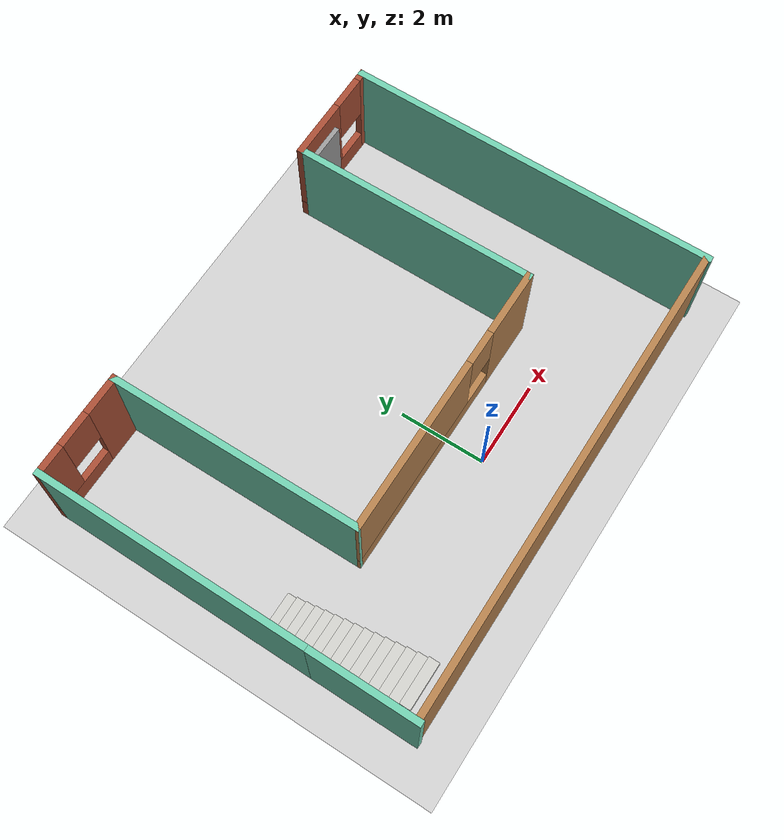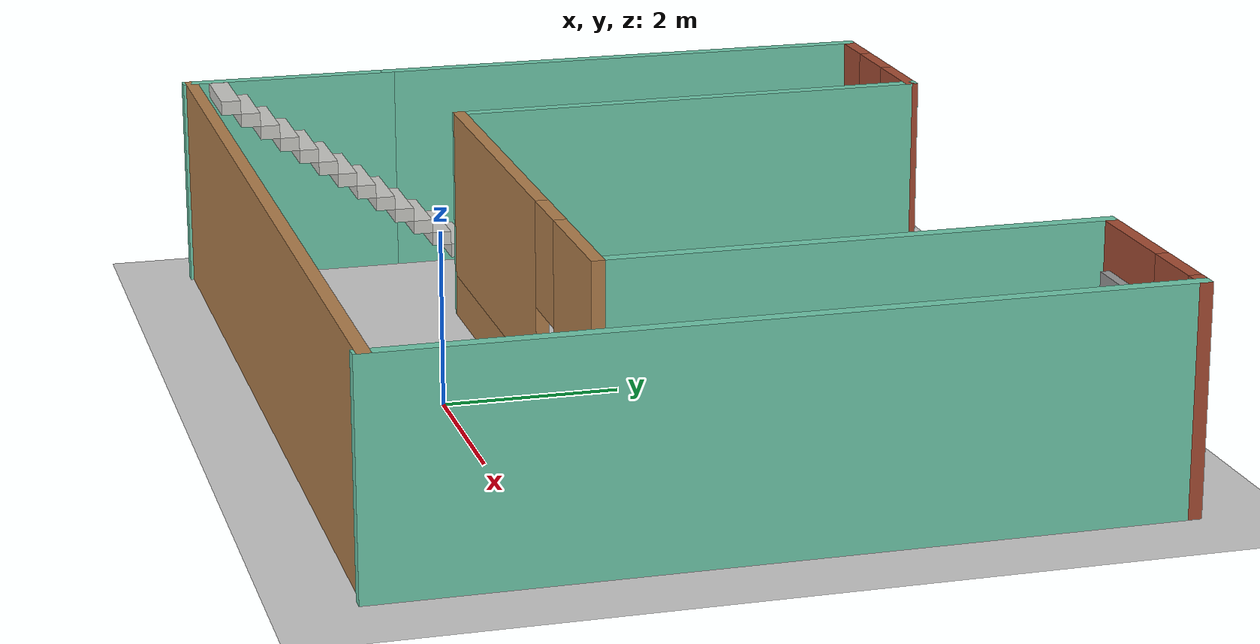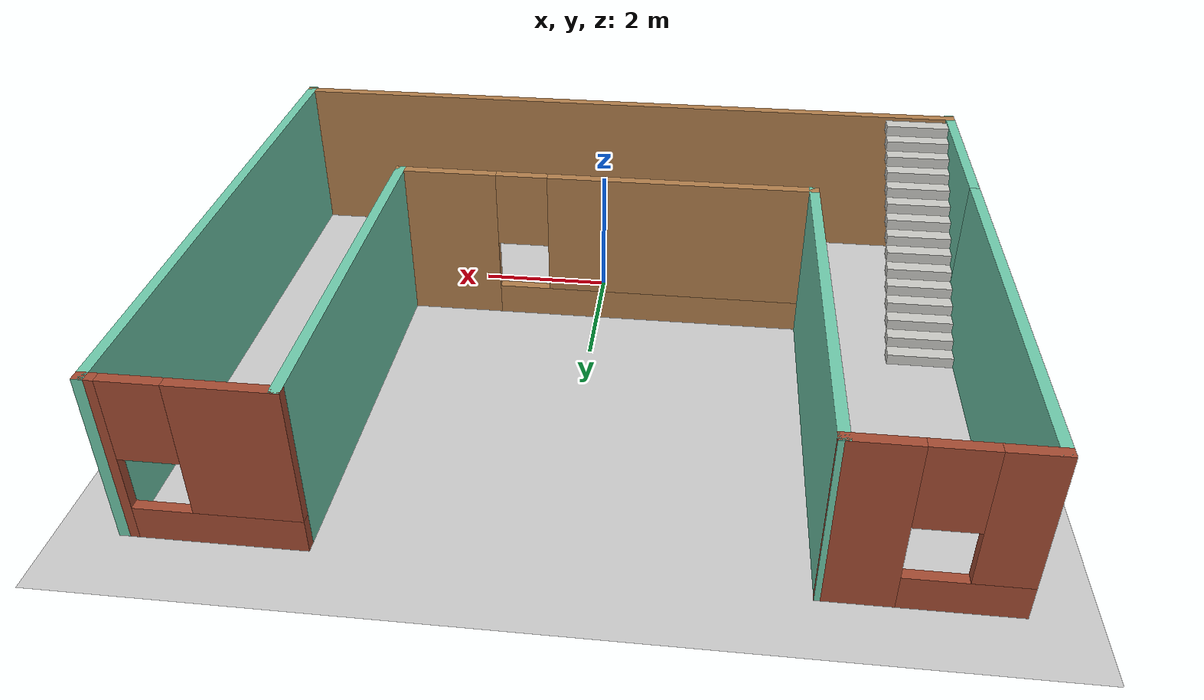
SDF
<sdf version="1.6">
 <world name="default">
  <light name="sun" type="directional">
   <pose>0 0 10 0 -0 0</pose>
   <diffuse>0.8 0.8 0.8 1</diffuse>
   <specular>0.2 0.2 0.2 1</specular>
   <attenuation>
    <range>1000</range>
    <constant>0.9</constant>
    <linear>0.01</linear>
    <quadratic>0.001</quadratic>
   </attenuation>
   <direction>-0.5 0.1 -0.9</direction>
  </light>
  <model name="ground_plane">
   <static>1</static>
   <link name="link">
    <collision name="collision">
     <geometry><plane><normal>0 0 1</normal><size>100 100</size></plane></geometry>
     <surface><friction><ode><mu>100</mu><mu2>50</mu2></ode></friction></surface>
    </collision>
    <visual name="visual">
     <cast_shadows>0</cast_shadows>
     <geometry><plane><normal>0 0 1</normal><size>100 100</size></plane></geometry>
     <material>
      <script><uri>file://media/materials/scripts/gazebo.material</uri><name>Gazebo/Grey</name></script>
     </material>
    </visual>
   </link>
  </model>
  <gravity>0 0 -9.8</gravity>
  <magnetic_field>6e-06 2.3e-05 -4.2e-05</magnetic_field>
  <atmosphere type="adiabatic"/>
  <physics name="default_physics" default="0" type="ode">
   <max_step_size>0.001</max_step_size>
   <real_time_factor>1</real_time_factor>
   <real_time_update_rate>1000</real_time_update_rate>
  </physics>
  <scene><ambient>0.4 0.4 0.4 1</ambient><background>0.7 0.7 0.7 1</background><shadows>1</shadows></scene>
  <spherical_coordinates>
   <surface_model>EARTH_WGS84</surface_model>
   <latitude_deg>0</latitude_deg>
   <longitude_deg>0</longitude_deg>
   <elevation>0</elevation>
   <heading_deg>0</heading_deg>
  </spherical_coordinates>
  <model name="U_world2">
   <pose>-0.11589 2.35329 0 0 -0 0</pose>
   <link name="Door_2">
    <collision name="Door_2_Collision">
     <geometry><box><size>0.9 0.17 2</size></box></geometry>
     <pose>0 0 1 0 -0 0</pose>
    </collision>
    <visual name="Door_2_Visual">
     <pose>0 0 1 0 -0 0</pose>
     <geometry><box><size>0.9 0.17 2</size></box></geometry>
     <material>
      <script><uri>file://media/materials/scripts/gazebo.material</uri><name>Gazebo/Grey</name></script>
     </material>
    </visual>
    <pose>3.89547 4.09766 0 0 -0 0</pose>
   </link>
   <link name="Stairs_1">
    <visual name="Stairs_1_Visual_0">
     <pose>-4.96958 -0.671542 0.083333 0 -0 0</pose>
     <geometry><box><size>1 0.233333 0.166667</size></box></geometry>
     <material>
      <script><uri>file://media/materials/scripts/gazebo.material</uri><name>Gazebo/CeilingTiled</name></script>
      <ambient>1 1 1 1</ambient>
     </material>
     <meta><layer>0</layer></meta>
    </visual>
    <collision name="Stairs_1_Collision_0">
     <geometry><box><size>1 0.233333 0.166667</size></box></geometry>
     <pose>-4.96958 -0.671542 0.083333 0 -0 0</pose>
    </collision>
    <visual name="Stairs_1_Visual_1">
     <pose>-4.96958 -0.904875 0.25 0 -0 0</pose>
     <geometry><box><size>1 0.233333 0.166667</size></box></geometry>
     <material>
      <script><uri>file://media/materials/scripts/gazebo.material</uri><name>Gazebo/CeilingTiled</name></script>
      <ambient>1 1 1 1</ambient>
     </material>
     <meta><layer>0</layer></meta>
    </visual>
    <collision name="Stairs_1_Collision_1">
     <geometry><box><size>1 0.233333 0.166667</size></box></geometry>
     <pose>-4.96958 -0.904875 0.25 0 -0 0</pose>
    </collision>
    <visual name="Stairs_1_Visual_2">
     <pose>-4.96958 -1.13821 0.416667 0 -0 0</pose>
     <geometry><box><size>1 0.233333 0.166667</size></box></geometry>
     <material>
      <script><uri>file://media/materials/scripts/gazebo.material</uri><name>Gazebo/CeilingTiled</name></script>
      <ambient>1 1 1 1</ambient>
     </material>
     <meta><layer>0</layer></meta>
    </visual>
    <collision name="Stairs_1_Collision_2">
     <geometry><box><size>1 0.233333 0.166667</size></box></geometry>
     <pose>-4.96958 -1.13821 0.416667 0 -0 0</pose>
    </collision>
    <visual name="Stairs_1_Visual_3">
     <pose>-4.96958 -1.37154 0.583333 0 -0 0</pose>
     <geometry><box><size>1 0.233333 0.166667</size></box></geometry>
     <material>
      <script><uri>file://media/materials/scripts/gazebo.material</uri><name>Gazebo/CeilingTiled</name></script>
      <ambient>1 1 1 1</ambient>
     </material>
     <meta><layer>0</layer></meta>
    </visual>
    <collision name="Stairs_1_Collision_3">
     <geometry><box><size>1 0.233333 0.166667</size></box></geometry>
     <pose>-4.96958 -1.37154 0.583333 0 -0 0</pose>
    </collision>
    <visual name="Stairs_1_Visual_4">
     <pose>-4.96958 -1.60488 0.75 0 -0 0</pose>
     <geometry><box><size>1 0.233333 0.166667</size></box></geometry>
     <material>
      <script><uri>file://media/materials/scripts/gazebo.material</uri><name>Gazebo/CeilingTiled</name></script>
      <ambient>1 1 1 1</ambient>
     </material>
     <meta><layer>0</layer></meta>
    </visual>
    <collision name="Stairs_1_Collision_4">
     <geometry><box><size>1 0.233333 0.166667</size></box></geometry>
     <pose>-4.96958 -1.60488 0.75 0 -0 0</pose>
    </collision>
    <visual name="Stairs_1_Visual_5">
     <pose>-4.96958 -1.83821 0.916667 0 -0 0</pose>
     <geometry><box><size>1 0.233333 0.166667</size></box></geometry>
     <material>
      <script><uri>file://media/materials/scripts/gazebo.material</uri><name>Gazebo/CeilingTiled</name></script>
      <ambient>1 1 1 1</ambient>
     </material>
     <meta><layer>0</layer></meta>
    </visual>
    <collision name="Stairs_1_Collision_5">
     <geometry><box><size>1 0.233333 0.166667</size></box></geometry>
     <pose>-4.96958 -1.83821 0.916667 0 -0 0</pose>
    </collision>
    <visual name="Stairs_1_Visual_6">
     <pose>-4.96958 -2.07154 1.08333 0 -0 0</pose>
     <geometry><box><size>1 0.233333 0.166667</size></box></geometry>
     <material>
      <script><uri>file://media/materials/scripts/gazebo.material</uri><name>Gazebo/CeilingTiled</name></script>
      <ambient>1 1 1 1</ambient>
     </material>
     <meta><layer>0</layer></meta>
    </visual>
    <collision name="Stairs_1_Collision_6">
     <geometry><box><size>1 0.233333 0.166667</size></box></geometry>
     <pose>-4.96958 -2.07154 1.08333 0 -0 0</pose>
    </collision>
    <visual name="Stairs_1_Visual_7">
     <pose>-4.96958 -2.30488 1.25 0 -0 0</pose>
     <geometry><box><size>1 0.233333 0.166667</size></box></geometry>
     <material>
      <script><uri>file://media/materials/scripts/gazebo.material</uri><name>Gazebo/CeilingTiled</name></script>
      <ambient>1 1 1 1</ambient>
     </material>
     <meta><layer>0</layer></meta>
    </visual>
    <collision name="Stairs_1_Collision_7">
     <geometry><box><size>1 0.233333 0.166667</size></box></geometry>
     <pose>-4.96958 -2.30488 1.25 0 -0 0</pose>
    </collision>
    <visual name="Stairs_1_Visual_8">
     <pose>-4.96958 -2.53821 1.41667 0 -0 0</pose>
     <geometry><box><size>1 0.233333 0.166667</size></box></geometry>
     <material>
      <script><uri>file://media/materials/scripts/gazebo.material</uri><name>Gazebo/CeilingTiled</name></script>
      <ambient>1 1 1 1</ambient>
     </material>
     <meta><layer>0</layer></meta>
    </visual>
    <collision name="Stairs_1_Collision_8">
     <geometry><box><size>1 0.233333 0.166667</size></box></geometry>
     <pose>-4.96958 -2.53821 1.41667 0 -0 0</pose>
    </collision>
    <visual name="Stairs_1_Visual_9">
     <pose>-4.96958 -2.77154 1.58333 0 -0 0</pose>
     <geometry><box><size>1 0.233333 0.166667</size></box></geometry>
     <material>
      <script><uri>file://media/materials/scripts/gazebo.material</uri><name>Gazebo/CeilingTiled</name></script>
      <ambient>1 1 1 1</ambient>
     </material>
     <meta><layer>0</layer></meta>
    </visual>
    <collision name="Stairs_1_Collision_9">
     <geometry><box><size>1 0.233333 0.166667</size></box></geometry>
     <pose>-4.96958 -2.77154 1.58333 0 -0 0</pose>
    </collision>
    <visual name="Stairs_1_Visual_10">
     <pose>-4.96958 -3.00488 1.75 0 -0 0</pose>
     <geometry><box><size>1 0.233333 0.166667</size></box></geometry>
     <material>
      <script><uri>file://media/materials/scripts/gazebo.material</uri><name>Gazebo/CeilingTiled</name></script>
      <ambient>1 1 1 1</ambient>
     </material>
     <meta><layer>0</layer></meta>
    </visual>
    <collision name="Stairs_1_Collision_10">
     <geometry><box><size>1 0.233333 0.166667</size></box></geometry>
     <pose>-4.96958 -3.00488 1.75 0 -0 0</pose>
    </collision>
    <visual name="Stairs_1_Visual_11">
     <pose>-4.96958 -3.23821 1.91667 0 -0 0</pose>
     <geometry><box><size>1 0.233333 0.166667</size></box></geometry>
     <material>
      <script><uri>file://media/materials/scripts/gazebo.material</uri><name>Gazebo/CeilingTiled</name></script>
      <ambient>1 1 1 1</ambient>
     </material>
     <meta><layer>0</layer></meta>
    </visual>
    <collision name="Stairs_1_Collision_11">
     <geometry><box><size>1 0.233333 0.166667</size></box></geometry>
     <pose>-4.96958 -3.23821 1.91667 0 -0 0</pose>
    </collision>
    <visual name="Stairs_1_Visual_12">
     <pose>-4.96958 -3.47154 2.08333 0 -0 0</pose>
     <geometry><box><size>1 0.233333 0.166667</size></box></geometry>
     <material>
      <script><uri>file://media/materials/scripts/gazebo.material</uri><name>Gazebo/CeilingTiled</name></script>
      <ambient>1 1 1 1</ambient>
     </material>
     <meta><layer>0</layer></meta>
    </visual>
    <collision name="Stairs_1_Collision_12">
     <geometry><box><size>1 0.233333 0.166667</size></box></geometry>
     <pose>-4.96958 -3.47154 2.08333 0 -0 0</pose>
    </collision>
    <visual name="Stairs_1_Visual_13">
     <pose>-4.96958 -3.70488 2.25 0 -0 0</pose>
     <geometry><box><size>1 0.233333 0.166667</size></box></geometry>
     <material>
      <script><uri>file://media/materials/scripts/gazebo.material</uri><name>Gazebo/CeilingTiled</name></script>
      <ambient>1 1 1 1</ambient>
     </material>
     <meta><layer>0</layer></meta>
    </visual>
    <collision name="Stairs_1_Collision_13">
     <geometry><box><size>1 0.233333 0.166667</size></box></geometry>
     <pose>-4.96958 -3.70488 2.25 0 -0 0</pose>
    </collision>
    <visual name="Stairs_1_Visual_14">
     <pose>-4.96958 -3.93821 2.41667 0 -0 0</pose>
     <geometry><box><size>1 0.233333 0.166667</size></box></geometry>
     <material>
      <script><uri>file://media/materials/scripts/gazebo.material</uri><name>Gazebo/CeilingTiled</name></script>
      <ambient>1 1 1 1</ambient>
     </material>
     <meta><layer>0</layer></meta>
    </visual>
    <collision name="Stairs_1_Collision_14">
     <geometry><box><size>1 0.233333 0.166667</size></box></geometry>
     <pose>-4.96958 -3.93821 2.41667 0 -0 0</pose>
    </collision>
   </link>
   <link name="Wall_14">
    <pose>-4.375 4.29503 0 0 -0 3.14159</pose>
    <visual name="Wall_14_Visual_0">
     <pose>-0.77396 0 1.25 0 -0 0</pose>
     <geometry><box><size>0.95208 0.15 2.5</size></box></geometry>
     <material>
      <script><uri>file://media/materials/scripts/gazebo.material</uri><name>Gazebo/Bricks</name></script>
      <ambient>1 1 1 1</ambient>
     </material>
     <meta><layer>0</layer></meta>
    </visual>
    <collision name="Wall_14_Collision_0">
     <geometry><box><size>0.95208 0.15 2.5</size></box></geometry>
     <pose>-0.77396 0 1.25 0 -0 0</pose>
    </collision>
    <visual name="Wall_14_Visual_1">
     <pose>0.47604 0 0.25 0 -0 0</pose>
     <geometry><box><size>1.54792 0.15 0.5</size></box></geometry>
     <material>
      <script><uri>file://media/materials/scripts/gazebo.material</uri><name>Gazebo/Bricks</name></script>
      <ambient>1 1 1 1</ambient>
     </material>
     <meta><layer>0</layer></meta>
    </visual>
    <collision name="Wall_14_Collision_1">
     <geometry><box><size>1.54792 0.15 0.5</size></box></geometry>
     <pose>0.47604 0 0.25 0 -0 0</pose>
    </collision>
    <visual name="Wall_14_Visual_2">
     <pose>0.87604 0 1.5 0 -0 0</pose>
     <geometry><box><size>0.74792 0.15 2</size></box></geometry>
     <material>
      <script><uri>file://media/materials/scripts/gazebo.material</uri><name>Gazebo/Bricks</name></script>
      <ambient>1 1 1 1</ambient>
     </material>
     <meta><layer>0</layer></meta>
    </visual>
    <collision name="Wall_14_Collision_2">
     <geometry><box><size>0.74792 0.15 2</size></box></geometry>
     <pose>0.87604 0 1.5 0 -0 0</pose>
    </collision>
    <visual name="Wall_14_Visual_3">
     <pose>0.10208 0 1.9 0 -0 0</pose>
     <geometry><box><size>0.8 0.15 1.2</size></box></geometry>
     <material>
      <script><uri>file://media/materials/scripts/gazebo.material</uri><name>Gazebo/Bricks</name></script>
      <ambient>1 1 1 1</ambient>
     </material>
     <meta><layer>0</layer></meta>
    </visual>
    <collision name="Wall_14_Collision_3">
     <geometry><box><size>0.8 0.15 1.2</size></box></geometry>
     <pose>0.10208 0 1.9 0 -0 0</pose>
    </collision>
   </link>
   <link name="Wall_15">
    <collision name="Wall_15_Collision">
     <geometry><box><size>6.25 0.15 2.5</size></box></geometry>
     <pose>0 0 1.25 0 -0 0</pose>
    </collision>
    <visual name="Wall_15_Visual">
     <pose>0 0 1.25 0 -0 0</pose>
     <geometry><box><size>6.25 0.15 2.5</size></box></geometry>
     <material>
      <script><uri>file://media/materials/scripts/gazebo.material</uri><name>Gazebo/Grey</name></script>
      <ambient>0.435294 0.796078 0.67451 1</ambient>
     </material>
     <meta><layer>0</layer></meta>
    </visual>
    <pose>-5.55 1.24503 0 0 0 -1.5708</pose>
   </link>
   <link name="Wall_17">
    <collision name="Wall_17_Collision">
     <geometry><box><size>2.64072 0.15 2.5</size></box></geometry>
     <pose>0 0 1.25 0 -0 0</pose>
    </collision>
    <visual name="Wall_17_Visual">
     <pose>0 0 1.25 0 -0 0</pose>
     <geometry><box><size>2.64072 0.15 2.5</size></box></geometry>
     <material>
      <script><uri>file://media/materials/scripts/gazebo.material</uri><name>Gazebo/Grey</name></script>
      <ambient>0.435294 0.796078 0.67451 1</ambient>
     </material>
     <meta><layer>0</layer></meta>
    </visual>
    <pose>-5.55 -3.05033 0 0 0 -1.5708</pose>
   </link>
   <link name="Wall_18">
    <collision name="Wall_18_Collision">
     <geometry><box><size>11.25 0.15 2.5</size></box></geometry>
     <pose>0 0 1.25 0 -0 0</pose>
    </collision>
    <visual name="Wall_18_Visual">
     <pose>0 0 1.25 0 -0 0</pose>
     <geometry><box><size>11.25 0.15 2.5</size></box></geometry>
     <material>
      <script><uri>file://media/materials/scripts/gazebo.material</uri><name>Gazebo/Wood</name></script>
      <ambient>1 1 1 1</ambient>
     </material>
     <meta><layer>0</layer></meta>
    </visual>
    <pose>0 -4.26051 0 0 -0 0</pose>
   </link>
   <link name="Wall_19">
    <collision name="Wall_19_Collision">
     <geometry><box><size>8.64072 0.15 2.5</size></box></geometry>
     <pose>0 0 1.25 0 -0 0</pose>
    </collision>
    <visual name="Wall_19_Visual">
     <pose>0 0 1.25 0 -0 0</pose>
     <geometry><box><size>8.64072 0.15 2.5</size></box></geometry>
     <material>
      <script><uri>file://media/materials/scripts/gazebo.material</uri><name>Gazebo/Grey</name></script>
      <ambient>0.435294 0.796078 0.67451 1</ambient>
     </material>
     <meta><layer>0</layer></meta>
    </visual>
    <pose>5.55 -0.050327 0 0 -0 1.5708</pose>
   </link>
   <link name="Wall_20">
    <pose>4.375 4.19503 0 0 -0 3.14159</pose>
    <visual name="Wall_20_Visual_0">
     <pose>-1.11291 0 1.25 0 -0 0</pose>
     <geometry><box><size>0.274171 0.15 2.5</size></box></geometry>
     <material>
      <script><uri>file://media/materials/scripts/gazebo.material</uri><name>Gazebo/Bricks</name></script>
      <ambient>1 1 1 1</ambient>
     </material>
     <meta><layer>0</layer></meta>
    </visual>
    <collision name="Wall_20_Collision_0">
     <geometry><box><size>0.274171 0.15 2.5</size></box></geometry>
     <pose>-1.11291 0 1.25 0 -0 0</pose>
    </collision>
    <visual name="Wall_20_Visual_1">
     <pose>0.137086 0 0.25 0 -0 0</pose>
     <geometry><box><size>2.22583 0.15 0.5</size></box></geometry>
     <material>
      <script><uri>file://media/materials/scripts/gazebo.material</uri><name>Gazebo/Bricks</name></script>
      <ambient>1 1 1 1</ambient>
     </material>
     <meta><layer>0</layer></meta>
    </visual>
    <collision name="Wall_20_Collision_1">
     <geometry><box><size>2.22583 0.15 0.5</size></box></geometry>
     <pose>0.137086 0 0.25 0 -0 0</pose>
    </collision>
    <visual name="Wall_20_Visual_2">
     <pose>0.537086 0 1.5 0 -0 0</pose>
     <geometry><box><size>1.42583 0.15 2</size></box></geometry>
     <material>
      <script><uri>file://media/materials/scripts/gazebo.material</uri><name>Gazebo/Bricks</name></script>
      <ambient>1 1 1 1</ambient>
     </material>
     <meta><layer>0</layer></meta>
    </visual>
    <collision name="Wall_20_Collision_2">
     <geometry><box><size>1.42583 0.15 2</size></box></geometry>
     <pose>0.537086 0 1.5 0 -0 0</pose>
    </collision>
    <visual name="Wall_20_Visual_3">
     <pose>-0.575829 0 1.9 0 -0 0</pose>
     <geometry><box><size>0.8 0.15 1.2</size></box></geometry>
     <material>
      <script><uri>file://media/materials/scripts/gazebo.material</uri><name>Gazebo/Bricks</name></script>
      <ambient>1 1 1 1</ambient>
     </material>
     <meta><layer>0</layer></meta>
    </visual>
    <collision name="Wall_20_Collision_3">
     <geometry><box><size>0.8 0.15 1.2</size></box></geometry>
     <pose>-0.575829 0 1.9 0 -0 0</pose>
    </collision>
   </link>
   <link name="Wall_21">
    <collision name="Wall_21_Collision">
     <geometry><box><size>5.75 0.15 2.5</size></box></geometry>
     <pose>0 0 1.25 0 -0 0</pose>
    </collision>
    <visual name="Wall_21_Visual">
     <pose>0 0 1.25 0 -0 0</pose>
     <geometry><box><size>5.75 0.15 2.5</size></box></geometry>
     <material>
      <script><uri>file://media/materials/scripts/gazebo.material</uri><name>Gazebo/Grey</name></script>
      <ambient>0.435294 0.796078 0.67451 1</ambient>
     </material>
     <meta><layer>0</layer></meta>
    </visual>
    <pose>3.2 1.39503 0 0 0 -1.5708</pose>
   </link>
   <link name="Wall_22">
    <pose>0.025 -1.40497 0 0 -0 3.14159</pose>
    <visual name="Wall_22_Visual_0">
     <pose>-2.45862 0 1.25 0 -0 0</pose>
     <geometry><box><size>1.58276 0.15 2.5</size></box></geometry>
     <material>
      <script><uri>file://media/materials/scripts/gazebo.material</uri><name>Gazebo/Wood</name></script>
      <ambient>1 1 1 1</ambient>
     </material>
     <meta><layer>0</layer></meta>
    </visual>
    <collision name="Wall_22_Collision_0">
     <geometry><box><size>1.58276 0.15 2.5</size></box></geometry>
     <pose>-2.45862 0 1.25 0 -0 0</pose>
    </collision>
    <visual name="Wall_22_Visual_1">
     <pose>0.791381 0 0.25 0 -0 0</pose>
     <geometry><box><size>4.91724 0.15 0.5</size></box></geometry>
     <material>
      <script><uri>file://media/materials/scripts/gazebo.material</uri><name>Gazebo/Wood</name></script>
      <ambient>1 1 1 1</ambient>
     </material>
     <meta><layer>0</layer></meta>
    </visual>
    <collision name="Wall_22_Collision_1">
     <geometry><box><size>4.91724 0.15 0.5</size></box></geometry>
     <pose>0.791381 0 0.25 0 -0 0</pose>
    </collision>
    <visual name="Wall_22_Visual_2">
     <pose>1.19138 0 1.5 0 -0 0</pose>
     <geometry><box><size>4.11724 0.15 2</size></box></geometry>
     <material>
      <script><uri>file://media/materials/scripts/gazebo.material</uri><name>Gazebo/Wood</name></script>
      <ambient>1 1 1 1</ambient>
     </material>
     <meta><layer>0</layer></meta>
    </visual>
    <collision name="Wall_22_Collision_2">
     <geometry><box><size>4.11724 0.15 2</size></box></geometry>
     <pose>1.19138 0 1.5 0 -0 0</pose>
    </collision>
    <visual name="Wall_22_Visual_3">
     <pose>-1.26724 0 1.9 0 -0 0</pose>
     <geometry><box><size>0.8 0.15 1.2</size></box></geometry>
     <material>
      <script><uri>file://media/materials/scripts/gazebo.material</uri><name>Gazebo/Wood</name></script>
      <ambient>1 1 1 1</ambient>
     </material>
     <meta><layer>0</layer></meta>
    </visual>
    <collision name="Wall_22_Collision_3">
     <geometry><box><size>0.8 0.15 1.2</size></box></geometry>
     <pose>-1.26724 0 1.9 0 -0 0</pose>
    </collision>
   </link>
   <link name="Wall_23">
    <collision name="Wall_23_Collision">
     <geometry><box><size>5.85022 0.15 2.5</size></box></geometry>
     <pose>0 0 1.25 0 -0 0</pose>
    </collision>
    <visual name="Wall_23_Visual">
     <pose>0 0 1.25 0 -0 0</pose>
     <geometry><box><size>5.85022 0.15 2.5</size></box></geometry>
     <material>
      <script><uri>file://media/materials/scripts/gazebo.material</uri><name>Gazebo/Grey</name></script>
      <ambient>0.435294 0.796078 0.67451 1</ambient>
     </material>
     <meta><layer>0</layer></meta>
    </visual>
    <pose>-3.175 1.44503 0 0 -0 1.57957</pose>
   </link>
   <static>1</static>
  </model>
 </world>
</sdf>
